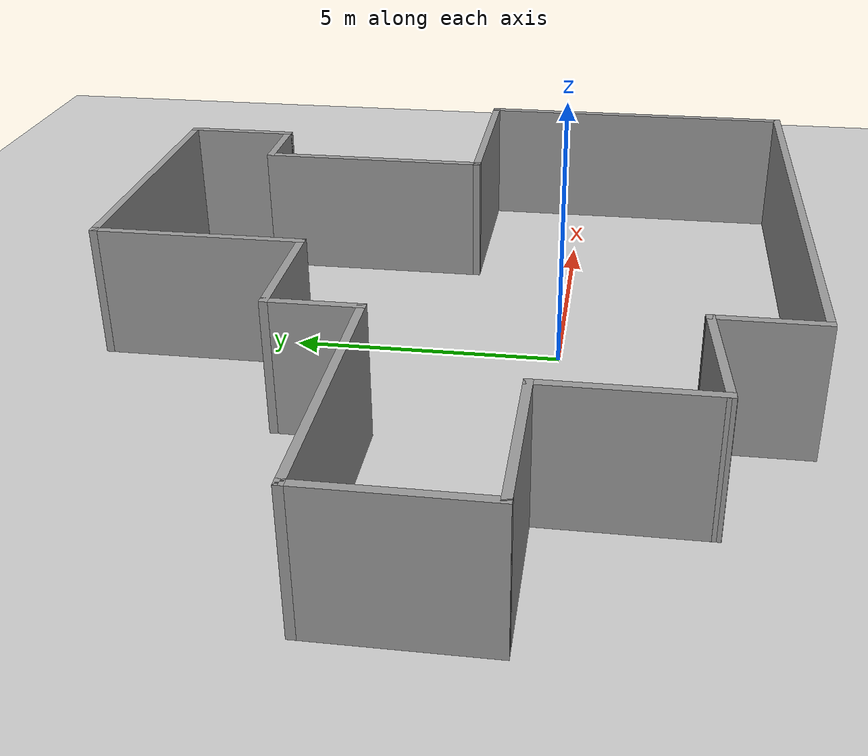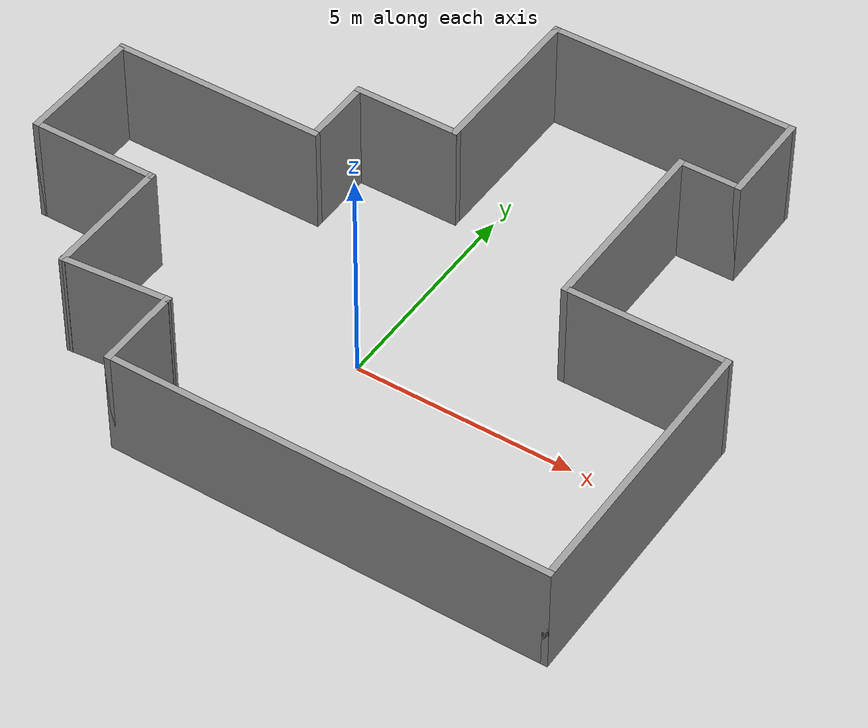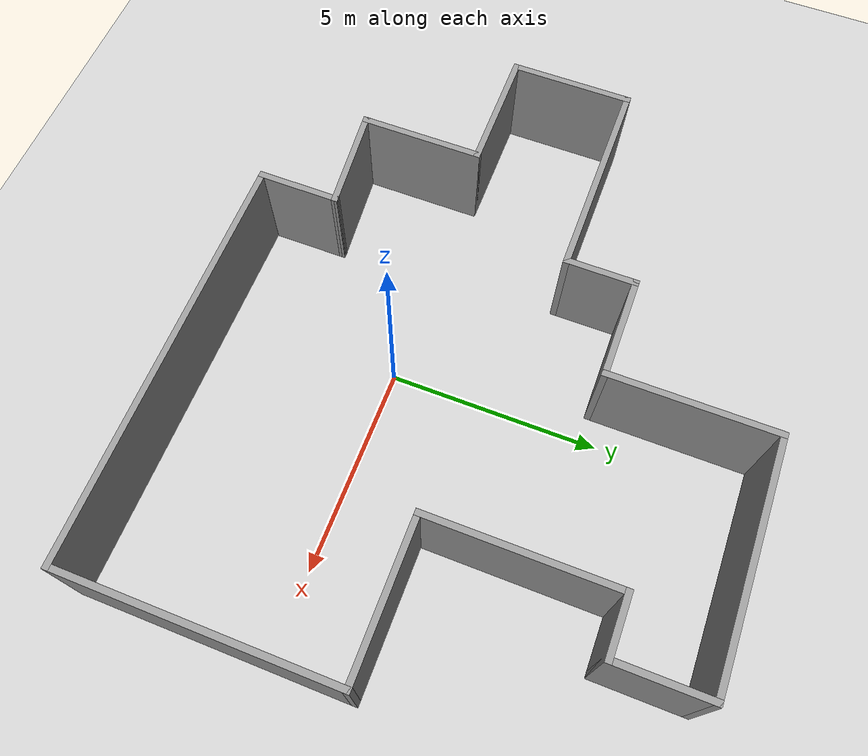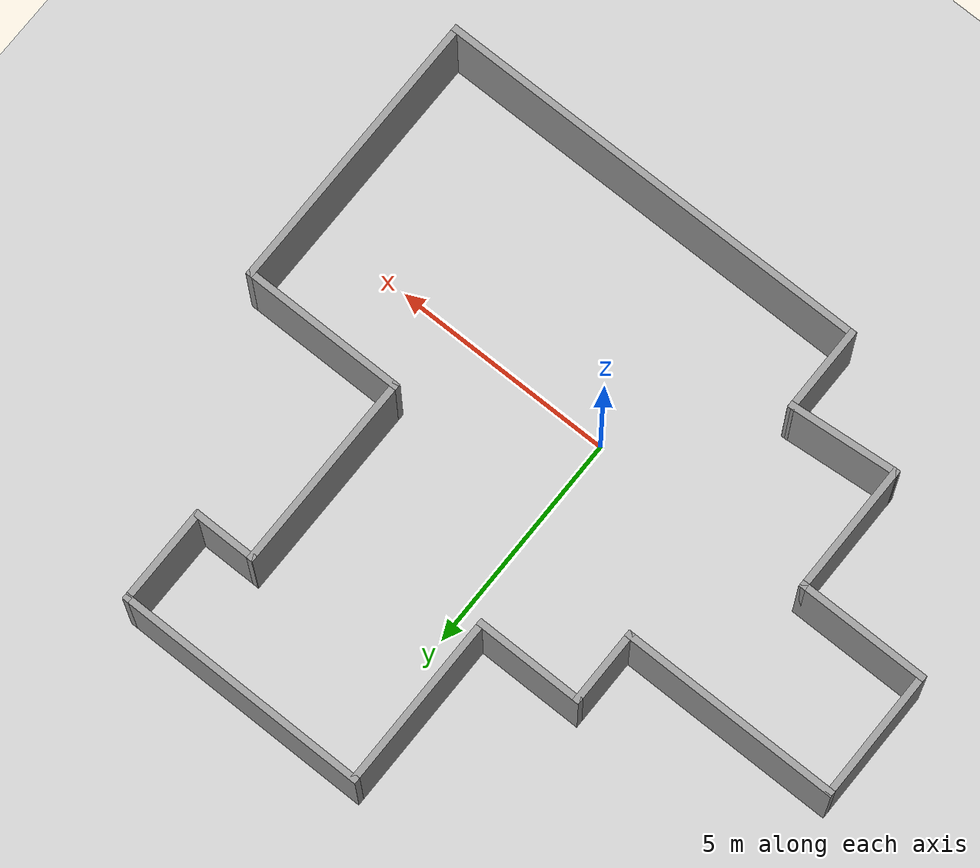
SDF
<sdf version="1.6">
 <world name="default">
  <light name="sun" type="directional">
   <pose>0 0 10 0 -0 0</pose>
   <diffuse>0.8 0.8 0.8 1</diffuse>
   <specular>0.2 0.2 0.2 1</specular>
   <attenuation>
    <range>1000</range>
    <constant>0.9</constant>
    <linear>0.01</linear>
    <quadratic>0.001</quadratic>
   </attenuation>
   <direction>-0.5 0.1 -0.9</direction>
  </light>
  <model name="ground_plane">
   <static>1</static>
   <link name="link">
    <collision name="collision">
     <geometry><plane><normal>0 0 1</normal><size>100 100</size></plane></geometry>
     <surface>
      <contact><collide_bitmask>65535</collide_bitmask></contact>
      <friction><ode><mu>100</mu><mu2>50</mu2></ode></friction>
     </surface>
    </collision>
    <visual name="visual">
     <cast_shadows>0</cast_shadows>
     <geometry><plane><normal>0 0 1</normal><size>100 100</size></plane></geometry>
     <material>
      <script><uri>file://media/materials/scripts/gazebo.material</uri><name>Gazebo/Grey</name></script>
     </material>
    </visual>
   </link>
  </model>
  <gravity>0 0 -9.8</gravity>
  <magnetic_field>6e-06 2.3e-05 -4.2e-05</magnetic_field>
  <atmosphere type="adiabatic"/>
  <physics name="default_physics" default="0" type="ode">
   <max_step_size>0.001</max_step_size>
   <real_time_factor>1</real_time_factor>
   <real_time_update_rate>1000</real_time_update_rate>
  </physics>
  <scene><ambient>0.4 0.4 0.4 1</ambient><background>0.7 0.7 0.7 1</background><shadows>1</shadows></scene>
  <audio><device>default</device></audio>
  <spherical_coordinates>
   <surface_model>EARTH_WGS84</surface_model>
   <latitude_deg>0</latitude_deg>
   <longitude_deg>0</longitude_deg>
   <elevation>0</elevation>
   <heading_deg>0</heading_deg>
  </spherical_coordinates>
  <model name="myworld">
   <pose>-0.385 2.06 0 0 -0 0</pose>
   <link name="Wall_0">
    <collision name="Wall_0_Collision">
     <geometry><box><size>2 0.15 2.5</size></box></geometry>
     <pose>0 0 1.25 0 -0 0</pose>
    </collision>
    <visual name="Wall_0_Visual">
     <pose>0 0 1.25 0 -0 0</pose>
     <geometry><box><size>2 0.15 2.5</size></box></geometry>
     <material>
      <script><uri>file://media/materials/scripts/gazebo.material</uri><name>Gazebo/Grey</name></script>
      <ambient>1 1 1 1</ambient>
     </material>
     <meta><layer>0</layer></meta>
    </visual>
    <pose>-2.325 -5.475 0 0 -0 -1.5708</pose>
   </link>
   <link name="Wall_1">
    <collision name="Wall_1_Collision">
     <geometry><box><size>10 0.15 2.5</size></box></geometry>
     <pose>0 0 1.25 0 -0 0</pose>
    </collision>
    <visual name="Wall_1_Visual">
     <pose>0 0 1.25 0 -0 0</pose>
     <geometry><box><size>10 0.15 2.5</size></box></geometry>
     <material>
      <script><uri>file://media/materials/scripts/gazebo.material</uri><name>Gazebo/Grey</name></script>
      <ambient>1 1 1 1</ambient>
     </material>
     <meta><layer>0</layer></meta>
    </visual>
    <pose>2.6 -6.4 0 0 -0 0</pose>
   </link>
   <link name="Wall_10">
    <collision name="Wall_10_Collision">
     <geometry><box><size>1.75 0.15 2.5</size></box></geometry>
     <pose>0 0 1.25 0 -0 0</pose>
    </collision>
    <visual name="Wall_10_Visual">
     <pose>0 0 1.25 0 -0 0</pose>
     <geometry><box><size>1.75 0.15 2.5</size></box></geometry>
     <material>
      <script><uri>file://media/materials/scripts/gazebo.material</uri><name>Gazebo/Grey</name></script>
      <ambient>1 1 1 1</ambient>
     </material>
     <meta><layer>0</layer></meta>
    </visual>
    <pose>-2.675 1.75 0 0 -0 -1.5708</pose>
   </link>
   <link name="Wall_11">
    <collision name="Wall_11_Collision">
     <geometry><box><size>5 0.15 2.5</size></box></geometry>
     <pose>0 0 1.25 0 -0 0</pose>
    </collision>
    <visual name="Wall_11_Visual">
     <pose>0 0 1.25 0 -0 0</pose>
     <geometry><box><size>5 0.15 2.5</size></box></geometry>
     <material>
      <script><uri>file://media/materials/scripts/gazebo.material</uri><name>Gazebo/Grey</name></script>
      <ambient>1 1 1 1</ambient>
     </material>
     <meta><layer>0</layer></meta>
    </visual>
    <pose>-5.1 0.95 0 0 -0 3.14159</pose>
   </link>
   <link name="Wall_12">
    <collision name="Wall_12_Collision">
     <geometry><box><size>3 0.15 2.5</size></box></geometry>
     <pose>0 0 1.25 0 -0 0</pose>
    </collision>
    <visual name="Wall_12_Visual">
     <pose>0 0 1.25 0 -0 0</pose>
     <geometry><box><size>3 0.15 2.5</size></box></geometry>
     <material>
      <script><uri>file://media/materials/scripts/gazebo.material</uri><name>Gazebo/Grey</name></script>
      <ambient>1 1 1 1</ambient>
     </material>
     <meta><layer>0</layer></meta>
    </visual>
    <pose>-7.525 -0.475 0 0 -0 -1.5708</pose>
   </link>
   <link name="Wall_13">
    <collision name="Wall_13_Collision">
     <geometry><box><size>3 0.15 2.5</size></box></geometry>
     <pose>0 0 1.25 0 -0 0</pose>
    </collision>
    <visual name="Wall_13_Visual">
     <pose>0 0 1.25 0 -0 0</pose>
     <geometry><box><size>3 0.15 2.5</size></box></geometry>
     <material>
      <script><uri>file://media/materials/scripts/gazebo.material</uri><name>Gazebo/Grey</name></script>
      <ambient>1 1 1 1</ambient>
     </material>
     <meta><layer>0</layer></meta>
    </visual>
    <pose>-6.1 -1.9 0 0 -0 0</pose>
   </link>
   <link name="Wall_14">
    <collision name="Wall_14_Collision">
     <geometry><box><size>3 0.15 2.5</size></box></geometry>
     <pose>0 0 1.25 0 -0 0</pose>
    </collision>
    <visual name="Wall_14_Visual">
     <pose>0 0 1.25 0 -0 0</pose>
     <geometry><box><size>3 0.15 2.5</size></box></geometry>
     <material>
      <script><uri>file://media/materials/scripts/gazebo.material</uri><name>Gazebo/Grey</name></script>
      <ambient>1 1 1 1</ambient>
     </material>
     <meta><layer>0</layer></meta>
    </visual>
    <pose>-4.675 -3.325 0 0 -0 -1.5708</pose>
   </link>
   <link name="Wall_15">
    <collision name="Wall_15_Collision">
     <geometry><box><size>2.50849 0.15 2.5</size></box></geometry>
     <pose>0 0 1.25 0 -0 0</pose>
    </collision>
    <visual name="Wall_15_Visual">
     <pose>0 0 1.25 0 -0 0</pose>
     <geometry><box><size>2.50849 0.15 2.5</size></box></geometry>
     <material>
      <script><uri>file://media/materials/scripts/gazebo.material</uri><name>Gazebo/Grey</name></script>
      <ambient>1 1 1 1</ambient>
     </material>
     <meta><layer>0</layer></meta>
    </visual>
    <pose>-3.5 -4.65 0 0 -0 0.084902</pose>
   </link>
   <link name="Wall_2">
    <collision name="Wall_2_Collision">
     <geometry><box><size>6.5 0.15 2.5</size></box></geometry>
     <pose>0 0 1.25 0 -0 0</pose>
    </collision>
    <visual name="Wall_2_Visual">
     <pose>0 0 1.25 0 -0 0</pose>
     <geometry><box><size>6.5 0.15 2.5</size></box></geometry>
     <material>
      <script><uri>file://media/materials/scripts/gazebo.material</uri><name>Gazebo/Grey</name></script>
      <ambient>1 1 1 1</ambient>
     </material>
     <meta><layer>0</layer></meta>
    </visual>
    <pose>7.525 -3.225 0 0 -0 1.5708</pose>
   </link>
   <link name="Wall_3">
    <collision name="Wall_3_Collision">
     <geometry><box><size>3.75 0.15 2.5</size></box></geometry>
     <pose>0 0 1.25 0 -0 0</pose>
    </collision>
    <visual name="Wall_3_Visual">
     <pose>0 0 1.25 0 -0 0</pose>
     <geometry><box><size>3.75 0.15 2.5</size></box></geometry>
     <material>
      <script><uri>file://media/materials/scripts/gazebo.material</uri><name>Gazebo/Grey</name></script>
      <ambient>1 1 1 1</ambient>
     </material>
     <meta><layer>0</layer></meta>
    </visual>
    <pose>5.725 -0.05 0 0 -0 3.14159</pose>
   </link>
   <link name="Wall_4">
    <collision name="Wall_4_Collision">
     <geometry><box><size>4.5 0.15 2.5</size></box></geometry>
     <pose>0 0 1.25 0 -0 0</pose>
    </collision>
    <visual name="Wall_4_Visual">
     <pose>0 0 1.25 0 -0 0</pose>
     <geometry><box><size>4.5 0.15 2.5</size></box></geometry>
     <material>
      <script><uri>file://media/materials/scripts/gazebo.material</uri><name>Gazebo/Grey</name></script>
      <ambient>1 1 1 1</ambient>
     </material>
     <meta><layer>0</layer></meta>
    </visual>
    <pose>3.925 2.125 0 0 -0 1.5708</pose>
   </link>
   <link name="Wall_5">
    <collision name="Wall_5_Collision">
     <geometry><box><size>1.5 0.15 2.5</size></box></geometry>
     <pose>0 0 1.25 0 -0 0</pose>
    </collision>
    <visual name="Wall_5_Visual">
     <pose>0 0 1.25 0 -0 0</pose>
     <geometry><box><size>1.5 0.15 2.5</size></box></geometry>
     <material>
      <script><uri>file://media/materials/scripts/gazebo.material</uri><name>Gazebo/Grey</name></script>
      <ambient>1 1 1 1</ambient>
     </material>
     <meta><layer>0</layer></meta>
    </visual>
    <pose>4.6 4.3 0 0 -0 0</pose>
   </link>
   <link name="Wall_6">
    <collision name="Wall_6_Collision">
     <geometry><box><size>2.25 0.15 2.5</size></box></geometry>
     <pose>0 0 1.25 0 -0 0</pose>
    </collision>
    <visual name="Wall_6_Visual">
     <pose>0 0 1.25 0 -0 0</pose>
     <geometry><box><size>2.25 0.15 2.5</size></box></geometry>
     <material>
      <script><uri>file://media/materials/scripts/gazebo.material</uri><name>Gazebo/Grey</name></script>
      <ambient>1 1 1 1</ambient>
     </material>
     <meta><layer>0</layer></meta>
    </visual>
    <pose>5.275 5.35 0 0 -0 1.5708</pose>
   </link>
   <link name="Wall_7">
    <collision name="Wall_7_Collision">
     <geometry><box><size>5.75 0.15 2.5</size></box></geometry>
     <pose>0 0 1.25 0 -0 0</pose>
    </collision>
    <visual name="Wall_7_Visual">
     <pose>0 0 1.25 0 -0 0</pose>
     <geometry><box><size>5.75 0.15 2.5</size></box></geometry>
     <material>
      <script><uri>file://media/materials/scripts/gazebo.material</uri><name>Gazebo/Grey</name></script>
      <ambient>1 1 1 1</ambient>
     </material>
     <meta><layer>0</layer></meta>
    </visual>
    <pose>2.475 6.4 0 0 -0 3.14159</pose>
   </link>
   <link name="Wall_8">
    <collision name="Wall_8_Collision">
     <geometry><box><size>4 0.15 2.5</size></box></geometry>
     <pose>0 0 1.25 0 -0 0</pose>
    </collision>
    <visual name="Wall_8_Visual">
     <pose>0 0 1.25 0 -0 0</pose>
     <geometry><box><size>4 0.15 2.5</size></box></geometry>
     <material>
      <script><uri>file://media/materials/scripts/gazebo.material</uri><name>Gazebo/Grey</name></script>
      <ambient>1 1 1 1</ambient>
     </material>
     <meta><layer>0</layer></meta>
    </visual>
    <pose>-0.325 4.475 0 0 -0 -1.5708</pose>
   </link>
   <link name="Wall_9">
    <collision name="Wall_9_Collision">
     <geometry><box><size>2.5 0.15 2.5</size></box></geometry>
     <pose>0 0 1.25 0 -0 0</pose>
    </collision>
    <visual name="Wall_9_Visual">
     <pose>0 0 1.25 0 -0 0</pose>
     <geometry><box><size>2.5 0.15 2.5</size></box></geometry>
     <material>
      <script><uri>file://media/materials/scripts/gazebo.material</uri><name>Gazebo/Grey</name></script>
      <ambient>1 1 1 1</ambient>
     </material>
     <meta><layer>0</layer></meta>
    </visual>
    <pose>-1.5 2.55 0 0 -0 3.14159</pose>
   </link>
   <static>1</static>
  </model>
 </world>
</sdf>
